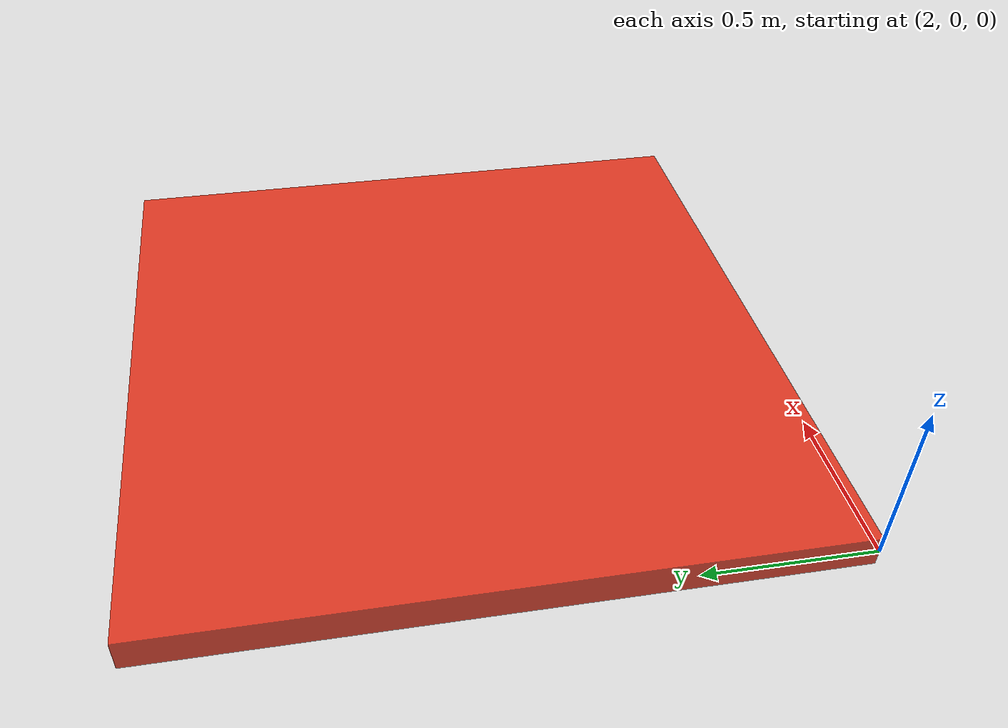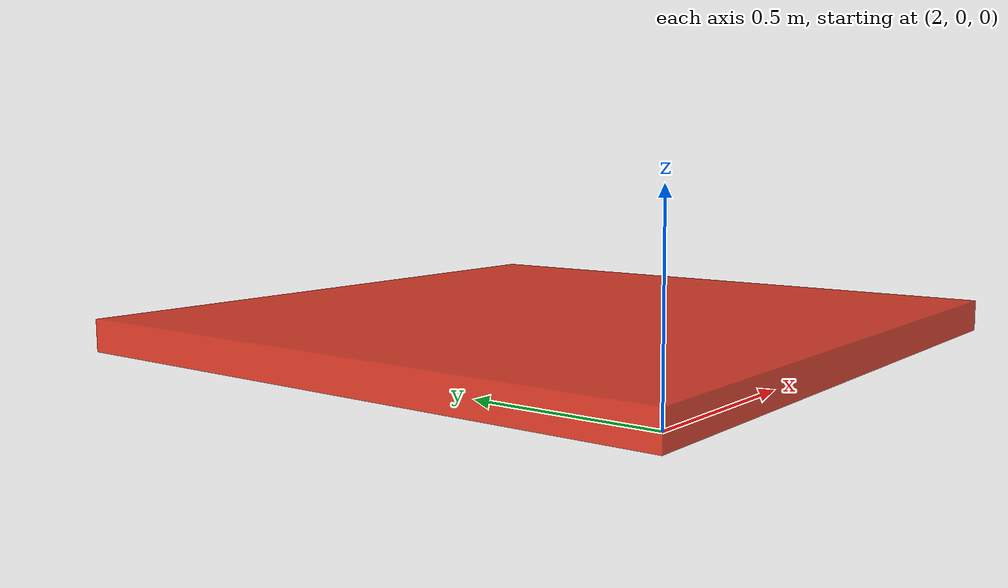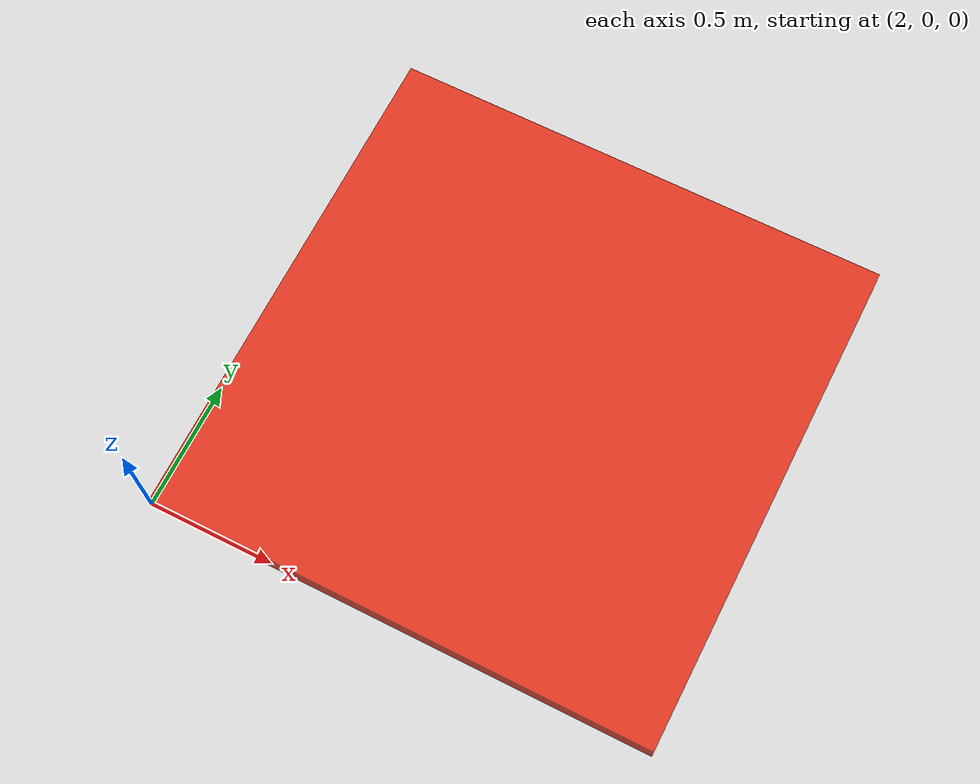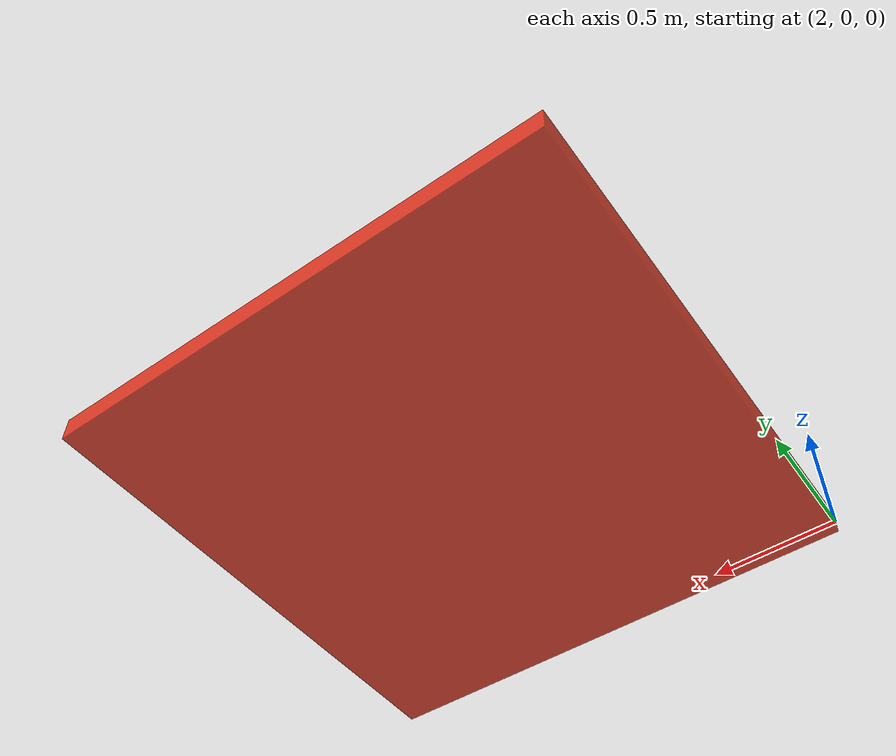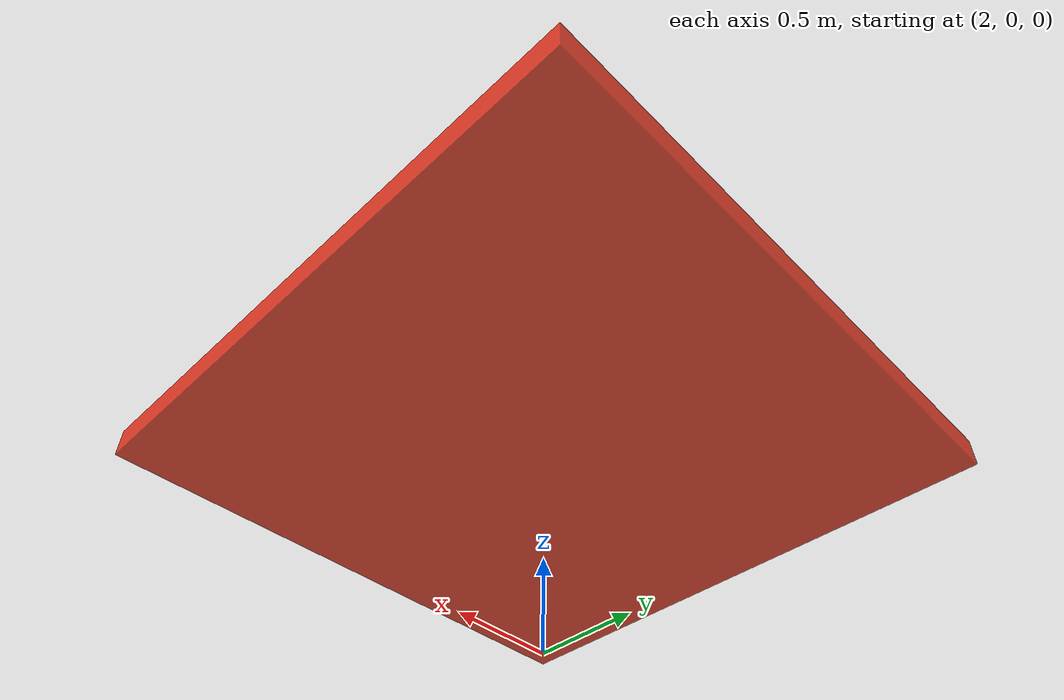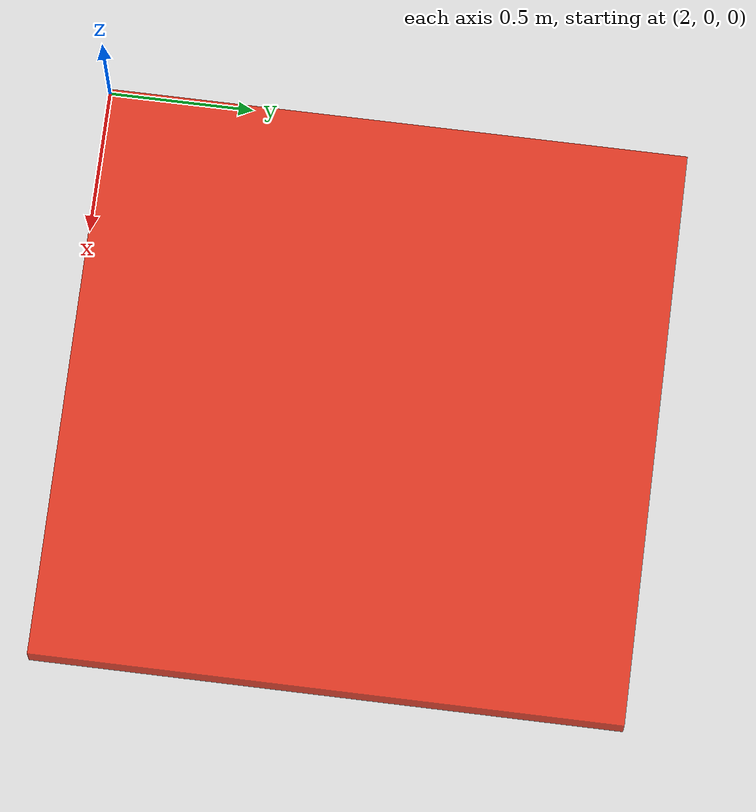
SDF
<sdf version="1.6">
  <model name="tile_1_0">
    <pose>3 1 0 0 0 0</pose>
      <link name="tile_1_0">
        <pose>0 0 0 0 -0 0</pose>
        <inertial>
          <mass>260.134</mass>
          <inertia>
            <ixx>86.8209</ixx>
            <ixy>0</ixy>
            <ixz>0</ixz>
            <iyy>86.8213</iyy>
            <iyz>0</iyz>
            <izz>173.423</izz>
          </inertia>
          <pose>0 0 0 0 -0 0</pose>
        </inertial>
        <visual name='visual'>
          <geometry>
            <box>
              <size>2 2 0.1</size>
            </box>
          </geometry>
          <material>
            <ambient>0.9 0.1 0 0.8</ambient>
            <diffuse>0.9 0.1 0 0.8</diffuse>
            <specular>0.9 0.1 0 0.8</specular>
          </material>
        </visual>
        <collision name='collision'>
          <geometry>
            <box>
              <size>2 2 0.1</size>
            </box>
          </geometry>
          <surface>
            <friction>
              <ode>
                <mu>28.999999999999996</mu>
                <mu2>93.0</mu2>
              </ode>
            </friction>
            <bounce/>
            <contact/>
          </surface>
        </collision>
        <enable_wind>false</enable_wind>
      </link>
  </model>
</sdf>
